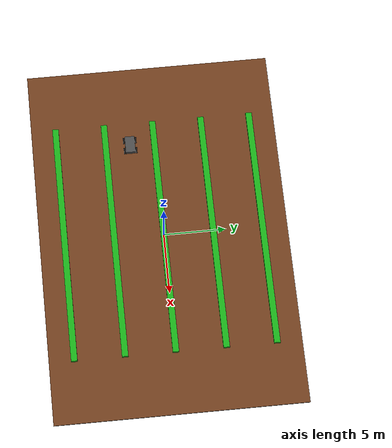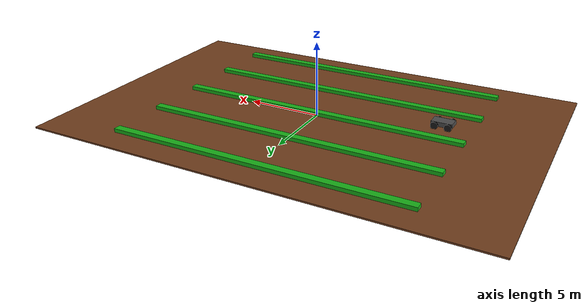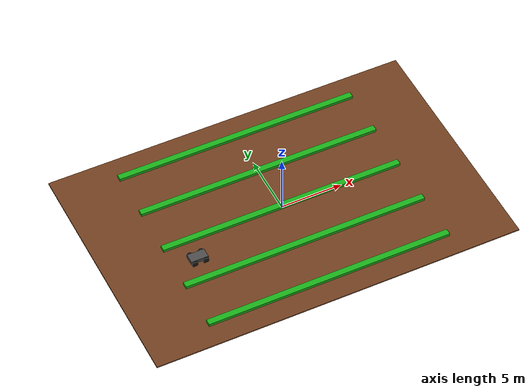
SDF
<?xml version="1.0" ?>
<sdf version="1.10">

  <world name="agri_world">

    <physics name="physics" type="gz-physics">
      <max_step_size>0.001</max_step_size>
      <real_time_factor>1.0</real_time_factor>
    </physics>

    <plugin
      filename="gz-sim-physics-system"
      name="gz::sim::systems::Physics">
    </plugin>

    <plugin
      filename="gz-sim-user-commands-system"
      name="gz::sim::systems::UserCommands">
    </plugin>

    <plugin
      filename="gz-sim-scene-broadcaster-system"
      name="gz::sim::systems::SceneBroadcaster">
    </plugin>

    <light type="directional" name="sun">
      <cast_shadows>true</cast_shadows>
      <pose>0 0 10 0 0 0</pose>
      <diffuse>0.8 0.8 0.8 1</diffuse>
      <specular>0.2 0.2 0.2 1</specular>
      <direction>-0.5 0.1 -0.9</direction>
    </light>

    <model name="ground">
      <static>true</static>

      <link name="ground_link">

        <collision name="collision">
          <geometry>
            <box>
              <size>30 20 0.1</size>
            </box>
          </geometry>
        </collision>

        <visual name="visual">
          <geometry>
            <box>
              <size>30 20 0.1</size>
            </box>
          </geometry>

          <material>
            <ambient>0.35 0.18 0.08 1</ambient>
            <diffuse>0.45 0.25 0.12 1</diffuse>
          </material>
        </visual>

      </link>
    </model>

    <model name="crop_row_1">
      <static>true</static>
      <pose>0 -4 0.15 0 0 0</pose>

      <link name="link">
        <visual name="visual">
          <geometry>
            <box>
              <size>20 0.5 0.3</size>
            </box>
          </geometry>

          <material>
            <ambient>0.05 0.5 0.05 1</ambient>
            <diffuse>0.1 0.7 0.1 1</diffuse>
          </material>
        </visual>
      </link>
    </model>

    <model name="crop_row_2">
      <static>true</static>
      <pose>0 0 0.15 0 0 0</pose>

      <link name="link">
        <visual name="visual">
          <geometry>
            <box>
              <size>20 0.5 0.3</size>
            </box>
          </geometry>

          <material>
            <ambient>0.05 0.5 0.05 1</ambient>
            <diffuse>0.1 0.7 0.1 1</diffuse>
          </material>
        </visual>
      </link>
    </model>

    <model name="crop_row_3">
      <static>true</static>
      <pose>0 4 0.15 0 0 0</pose>

      <link name="link">
        <visual name="visual">
          <geometry>
            <box>
              <size>20 0.5 0.3</size>
            </box>
          </geometry>

          <material>
            <ambient>0.05 0.5 0.05 1</ambient>
            <diffuse>0.1 0.7 0.1 1</diffuse>
          </material>
        </visual>
      </link>
    </model>

    <model name="crop_row_4">
      <static>true</static>
      <pose>0 8 0.15 0 0 0</pose>

      <link name="link">
        <visual name="visual">
          <geometry>
            <box>
              <size>20 0.5 0.3</size>
            </box>
          </geometry>

          <material>
            <ambient>0.05 0.5 0.05 1</ambient>
            <diffuse>0.1 0.7 0.1 1</diffuse>
          </material>
        </visual>
      </link>
    </model>

    <model name="crop_row_5">
      <static>true</static>
      <pose>0 -8 0.15 0 0 0</pose>

      <link name="link">
        <visual name="visual">
          <geometry>
            <box>
              <size>20 0.5 0.3</size>
            </box>
          </geometry>

          <material>
            <ambient>0.05 0.5 0.05 1</ambient>
            <diffuse>0.1 0.7 0.1 1</diffuse>
          </material>
        </visual>
      </link>
    </model>

    <include>
      <uri>
         file:///home/maria/agri_ws/src/agri_simulation/models/agri_robot/model.sdf
       </uri>
    </include>

  </world>

</sdf>

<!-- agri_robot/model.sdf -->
<sdf version="1.10">

  <model name="agri_robot">

    <pose>-8 -2 0.35 0 0 0</pose>

    <!-- CUERPO PRINCIPAL -->

    <link name="base_link">

      <inertial>
        <mass>12.0</mass>
        <inertia>
          <ixx>0.6</ixx>
          <iyy>0.8</iyy>
          <izz>1.0</izz>
        </inertia>
      </inertial>

      <collision name="base_collision">
        <geometry>
          <box>
            <size>1.4 0.8 0.30</size>
          </box>
        </geometry>
      </collision>

      <visual name="base_visual">
        <geometry>
          <box>
            <size>1.4 0.8 0.30</size>
          </box>
        </geometry>

        <material>
          <ambient>0.15 0.15 0.15 1</ambient>
          <diffuse>0.30 0.30 0.30 1</diffuse>
        </material>
      </visual>

    </link>

    <!-- RUEDA DELANTERA IZQUIERDA -->

    <link name="front_left_wheel">

      <pose relative_to="base_link">
        0.45 0.48 -0.10 1.5708 0 0
      </pose>

      <inertial>
        <mass>1.0</mass>
        <inertia>
          <ixx>0.02</ixx>
          <iyy>0.02</iyy>
          <izz>0.02</izz>
        </inertia>
      </inertial>

      <collision name="collision">
        <geometry>
          <cylinder>
            <radius>0.25</radius>
            <length>0.12</length>
          </cylinder>
        </geometry>
      </collision>

      <visual name="visual">
        <geometry>
          <cylinder>
            <radius>0.25</radius>
            <length>0.12</length>
          </cylinder>
        </geometry>

        <material>
          <ambient>0.05 0.05 0.05 1</ambient>
          <diffuse>0.10 0.10 0.10 1</diffuse>
        </material>
      </visual>

    </link>

    <!-- RUEDA TRASERA IZQUIERDA -->

    <link name="rear_left_wheel">

      <pose relative_to="base_link">
        -0.45 0.48 -0.10 1.5708 0 0
      </pose>

      <inertial>
        <mass>1.0</mass>
        <inertia>
          <ixx>0.02</ixx>
          <iyy>0.02</iyy>
          <izz>0.02</izz>
        </inertia>
      </inertial>

      <collision name="collision">
        <geometry>
          <cylinder>
            <radius>0.25</radius>
            <length>0.12</length>
          </cylinder>
        </geometry>
      </collision>

      <visual name="visual">
        <geometry>
          <cylinder>
            <radius>0.25</radius>
            <length>0.12</length>
          </cylinder>
        </geometry>

        <material>
          <ambient>0.05 0.05 0.05 1</ambient>
          <diffuse>0.10 0.10 0.10 1</diffuse>
        </material>
      </visual>

    </link>

    <!-- RUEDA DELANTERA DERECHA -->

    <link name="front_right_wheel">

      <pose relative_to="base_link">
        0.45 -0.48 -0.10 1.5708 0 0
      </pose>

      <inertial>
        <mass>1.0</mass>
        <inertia>
          <ixx>0.02</ixx>
          <iyy>0.02</iyy>
          <izz>0.02</izz>
        </inertia>
      </inertial>

      <collision name="collision">
        <geometry>
          <cylinder>
            <radius>0.25</radius>
            <length>0.12</length>
          </cylinder>
        </geometry>
      </collision>

      <visual name="visual">
        <geometry>
          <cylinder>
            <radius>0.25</radius>
            <length>0.12</length>
          </cylinder>
        </geometry>

        <material>
          <ambient>0.05 0.05 0.05 1</ambient>
          <diffuse>0.10 0.10 0.10 1</diffuse>
        </material>
      </visual>

    </link>

    <!-- RUEDA TRASERA DERECHA -->

    <link name="rear_right_wheel">

      <pose relative_to="base_link">
        -0.45 -0.48 -0.10 1.5708 0 0
      </pose>

      <inertial>
        <mass>1.0</mass>
        <inertia>
          <ixx>0.02</ixx>
          <iyy>0.02</iyy>
          <izz>0.02</izz>
        </inertia>
      </inertial>

      <collision name="collision">
        <geometry>
          <cylinder>
            <radius>0.25</radius>
            <length>0.12</length>
          </cylinder>
        </geometry>
      </collision>

      <visual name="visual">
        <geometry>
          <cylinder>
            <radius>0.25</radius>
            <length>0.12</length>
          </cylinder>
        </geometry>

        <material>
          <ambient>0.05 0.05 0.05 1</ambient>
          <diffuse>0.10 0.10 0.10 1</diffuse>
        </material>
      </visual>

    </link>

    <!-- JOINTS -->

    <joint name="front_left_wheel_joint" type="revolute">
      <parent>base_link</parent>
      <child>front_left_wheel</child>

      <axis>
        <xyz>0 0 1</xyz>
      </axis>
    </joint>

    <joint name="rear_left_wheel_joint" type="revolute">
      <parent>base_link</parent>
      <child>rear_left_wheel</child>

      <axis>
        <xyz>0 0 1</xyz>
      </axis>
    </joint>

    <joint name="front_right_wheel_joint" type="revolute">
      <parent>base_link</parent>
      <child>front_right_wheel</child>

      <axis>
        <xyz>0 0 1</xyz>
      </axis>
    </joint>

    <joint name="rear_right_wheel_joint" type="revolute">
      <parent>base_link</parent>
      <child>rear_right_wheel</child>

      <axis>
        <xyz>0 0 1</xyz>
      </axis>
    </joint>

    <!-- CONTROL DIFERENCIAL -->

    <plugin
      filename="gz-sim-diff-drive-system"
      name="gz::sim::systems::DiffDrive">

      <left_joint>
        front_left_wheel_joint
      </left_joint>

      <left_joint>
        rear_left_wheel_joint
      </left_joint>

      <right_joint>
        front_right_wheel_joint
      </right_joint>

      <right_joint>
        rear_right_wheel_joint
      </right_joint>

      <wheel_separation>0.96</wheel_separation>

      <wheel_radius>0.25</wheel_radius>

      <topic>/agri_robot/cmd_vel</topic>

      <odom_topic>/agri_robot/odom</odom_topic>

      <odom_publish_frequency>30</odom_publish_frequency>

    </plugin>

  </model>

</sdf>
